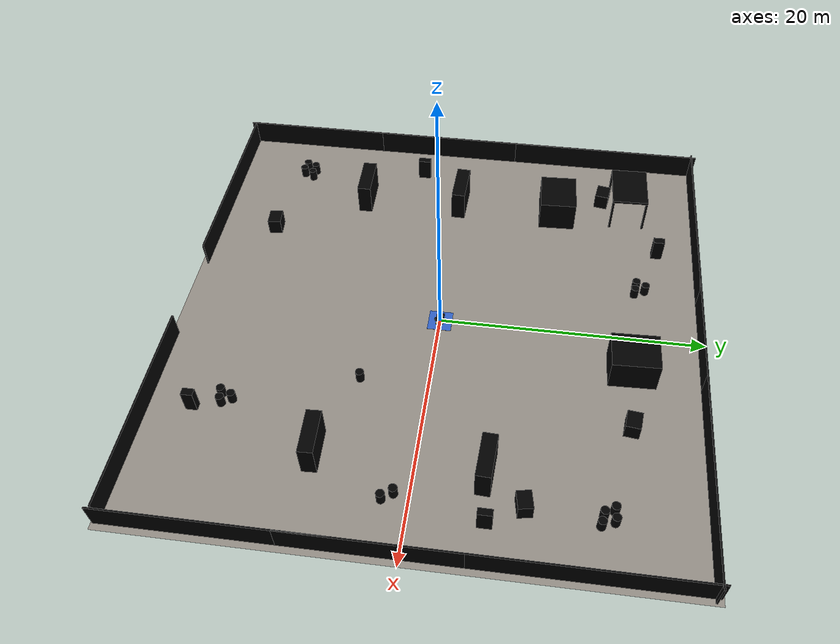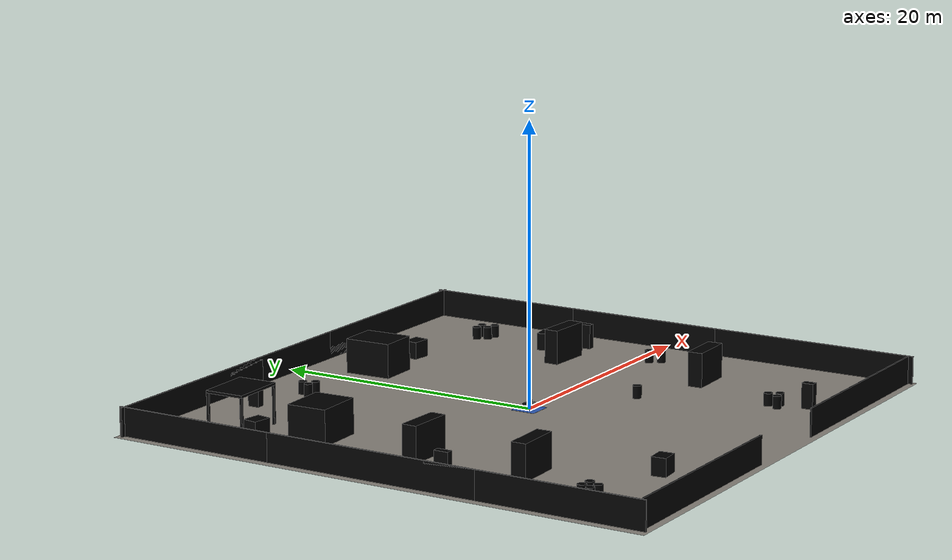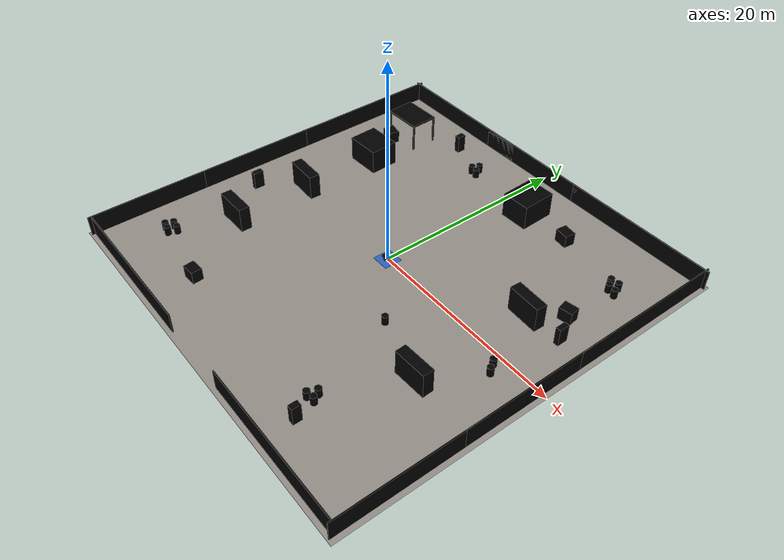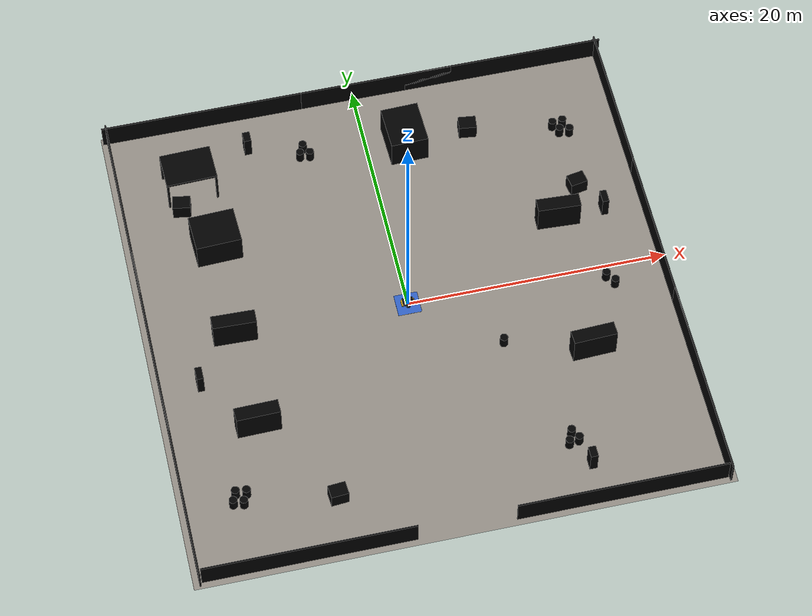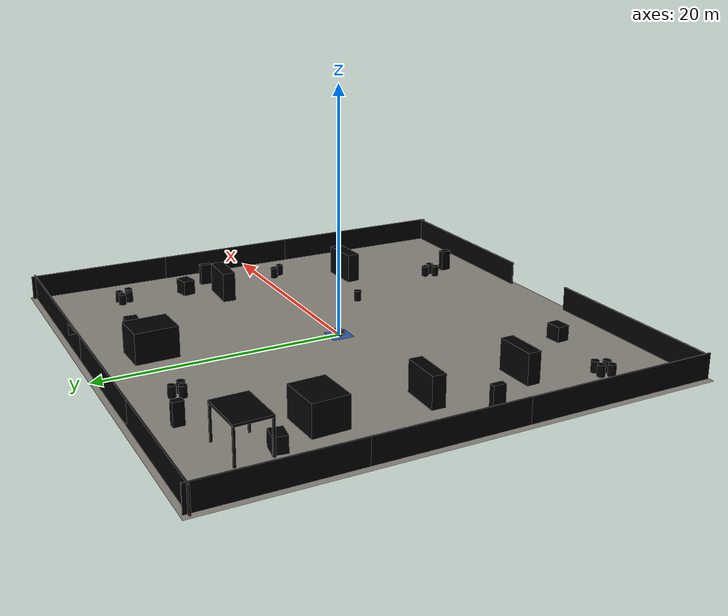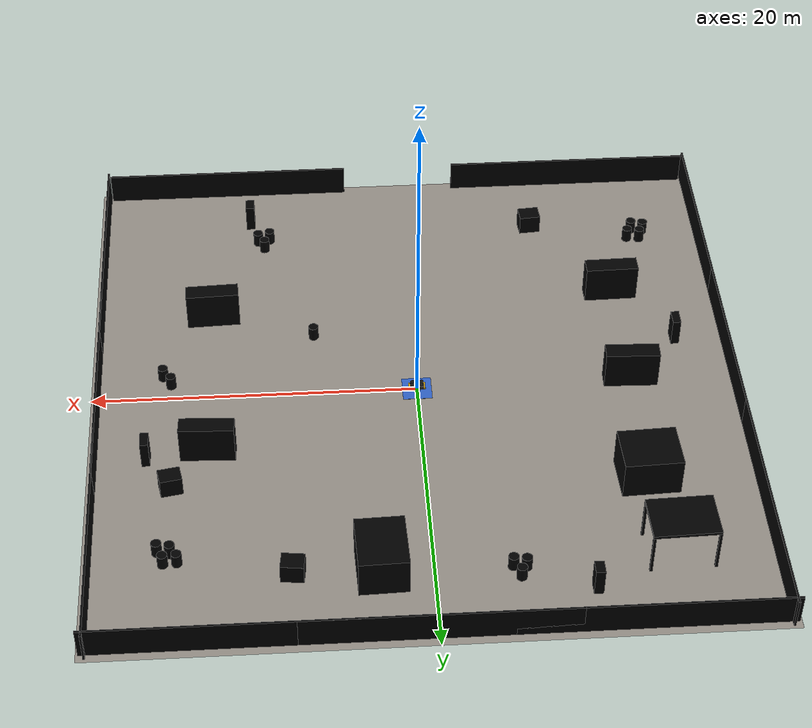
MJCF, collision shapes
<mujoco model="utility_depot_40_v1">
  <compiler angle="radian" meshdir="assets/utility_depot_40_v1" texturedir="assets/utility_depot_40_v1" />
  <option timestep="0.002" integrator="implicitfast" magnetic="0 0 0" />
  <visual>
    <headlight diffuse="0.6 0.6 0.6" ambient="0.3 0.3 0.3" specular="0 0 0" />
    <global azimuth="120" elevation="-20" offwidth="1280" offheight="720" />
  </visual>
  <asset>
    <texture type="skybox" builtin="gradient" rgb1="0.55 0.65 0.75" rgb2="0.08 0.1 0.14" width="512" height="3072" />
    <texture type="2d" name="ground_texture" file="ground_color.png" />
    <material name="ground_material" rgba="0.8 0.8 0.8 1" reflectance="0.05" texture="ground_texture" texuniform="true" texrepeat="8 8" />
    <mesh name="visual_mat_cabinet" file="visual_mat_cabinet.obj" smoothnormal="true" />
    <material name="visual_mat_cabinet" rgba="0.47 0.5 0.47 1" />
    <mesh name="visual_mat_cable" file="visual_mat_cable.obj" smoothnormal="true" />
    <material name="visual_mat_cable" rgba="0.018 0.02 0.022 1" />
    <mesh name="visual_mat_concrete" file="visual_mat_concrete.obj" smoothnormal="true" />
    <material name="visual_mat_concrete" rgba="0.32 0.31 0.28 1" />
    <mesh name="visual_mat_cone_orange" file="visual_mat_cone_orange.obj" smoothnormal="true" />
    <material name="visual_mat_cone_orange" rgba="0.9 0.22 0.025 1" />
    <mesh name="visual_mat_dark_steel" file="visual_mat_dark_steel.obj" smoothnormal="true" />
    <material name="visual_mat_dark_steel" rgba="0.075 0.09 0.095 1" />
    <mesh name="visual_mat_drum_blue" file="visual_mat_drum_blue.obj" smoothnormal="true" />
    <material name="visual_mat_drum_blue" rgba="0.035 0.16 0.29 1" />
    <mesh name="visual_mat_drum_green" file="visual_mat_drum_green.obj" smoothnormal="true" />
    <material name="visual_mat_drum_green" rgba="0.08 0.25 0.16 1" />
    <mesh name="visual_mat_galvanized" file="visual_mat_galvanized.obj" smoothnormal="true" />
    <material name="visual_mat_galvanized" rgba="0.36 0.39 0.4 1" />
    <mesh name="visual_mat_gravel_stone" file="visual_mat_gravel_stone.obj" smoothnormal="true" />
    <material name="visual_mat_gravel_stone" rgba="0.16 0.145 0.12 1" />
    <mesh name="visual_mat_inspection_red" file="visual_mat_inspection_red.obj" smoothnormal="true" />
    <material name="visual_mat_inspection_red" rgba="0.72 0.012 0.008 1" />
    <mesh name="visual_mat_label_white" file="visual_mat_label_white.obj" smoothnormal="true" />
    <material name="visual_mat_label_white" rgba="0.78 0.77 0.7 1" />
    <mesh name="visual_mat_pallet_wood" file="visual_mat_pallet_wood.obj" smoothnormal="true" />
    <material name="visual_mat_pallet_wood" rgba="0.33 0.16 0.065 1" />
    <mesh name="visual_mat_pipe" file="visual_mat_pipe.obj" smoothnormal="true" />
    <material name="visual_mat_pipe" rgba="0.18 0.21 0.23 1" />
    <mesh name="visual_mat_rack_blue" file="visual_mat_rack_blue.obj" smoothnormal="true" />
    <material name="visual_mat_rack_blue" rgba="0.045 0.16 0.28 1" />
    <mesh name="visual_mat_safety_yellow" file="visual_mat_safety_yellow.obj" smoothnormal="true" />
    <material name="visual_mat_safety_yellow" rgba="0.8 0.47 0.035 1" />
    <mesh name="visual_mat_shed" file="visual_mat_shed.obj" smoothnormal="true" />
    <material name="visual_mat_shed" rgba="0.29 0.31 0.3 1" />
    <mesh name="visual_mat_tire_wear" file="visual_mat_tire_wear.obj" smoothnormal="true" />
    <material name="visual_mat_tire_wear" rgba="0.055 0.048 0.038 1" />
    <mesh name="visual_mat_warning_black" file="visual_mat_warning_black.obj" smoothnormal="true" />
    <material name="visual_mat_warning_black" rgba="0.012 0.014 0.015 1" />
  </asset>
  <worldbody>
    <light name="sun" directional="true" pos="-4 -6 12" dir="0.25 0.35 -1" diffuse="0.9 0.88 0.82" />
    <camera name="overview" pos="37 -45 39" quat="0.82640088 0.45085961 0.1615545 0.29612058" fovy="25.9892" />
    <geom name="floor" type="plane" size="20 20 1" pos="0 0 0" material="ground_material" />
    <geom name="visual_mat_cabinet" type="mesh" mesh="visual_mat_cabinet" material="visual_mat_cabinet" contype="0" conaffinity="0" group="2" density="0" />
    <geom name="visual_mat_cable" type="mesh" mesh="visual_mat_cable" material="visual_mat_cable" contype="0" conaffinity="0" group="2" density="0" />
    <geom name="visual_mat_concrete" type="mesh" mesh="visual_mat_concrete" material="visual_mat_concrete" contype="0" conaffinity="0" group="2" density="0" />
    <geom name="visual_mat_cone_orange" type="mesh" mesh="visual_mat_cone_orange" material="visual_mat_cone_orange" contype="0" conaffinity="0" group="2" density="0" />
    <geom name="visual_mat_dark_steel" type="mesh" mesh="visual_mat_dark_steel" material="visual_mat_dark_steel" contype="0" conaffinity="0" group="2" density="0" />
    <geom name="visual_mat_drum_blue" type="mesh" mesh="visual_mat_drum_blue" material="visual_mat_drum_blue" contype="0" conaffinity="0" group="2" density="0" />
    <geom name="visual_mat_drum_green" type="mesh" mesh="visual_mat_drum_green" material="visual_mat_drum_green" contype="0" conaffinity="0" group="2" density="0" />
    <geom name="visual_mat_galvanized" type="mesh" mesh="visual_mat_galvanized" material="visual_mat_galvanized" contype="0" conaffinity="0" group="2" density="0" />
    <geom name="visual_mat_gravel_stone" type="mesh" mesh="visual_mat_gravel_stone" material="visual_mat_gravel_stone" contype="0" conaffinity="0" group="2" density="0" />
    <geom name="visual_mat_inspection_red" type="mesh" mesh="visual_mat_inspection_red" material="visual_mat_inspection_red" contype="0" conaffinity="0" group="2" density="0" />
    <geom name="visual_mat_label_white" type="mesh" mesh="visual_mat_label_white" material="visual_mat_label_white" contype="0" conaffinity="0" group="2" density="0" />
    <geom name="visual_mat_pallet_wood" type="mesh" mesh="visual_mat_pallet_wood" material="visual_mat_pallet_wood" contype="0" conaffinity="0" group="2" density="0" />
    <geom name="visual_mat_pipe" type="mesh" mesh="visual_mat_pipe" material="visual_mat_pipe" contype="0" conaffinity="0" group="2" density="0" />
    <geom name="visual_mat_rack_blue" type="mesh" mesh="visual_mat_rack_blue" material="visual_mat_rack_blue" contype="0" conaffinity="0" group="2" density="0" />
    <geom name="visual_mat_safety_yellow" type="mesh" mesh="visual_mat_safety_yellow" material="visual_mat_safety_yellow" contype="0" conaffinity="0" group="2" density="0" />
    <geom name="visual_mat_shed" type="mesh" mesh="visual_mat_shed" material="visual_mat_shed" contype="0" conaffinity="0" group="2" density="0" />
    <geom name="visual_mat_tire_wear" type="mesh" mesh="visual_mat_tire_wear" material="visual_mat_tire_wear" contype="0" conaffinity="0" group="2" density="0" />
    <geom name="visual_mat_warning_black" type="mesh" mesh="visual_mat_warning_black" material="visual_mat_warning_black" contype="0" conaffinity="0" group="2" density="0" />
    <geom name="col_barrel_01" type="cylinder" size="0.30500001 0.44999999" pos="-16 -14 0.47999996" quat="0.99968749 0 0 -0.024997393" group="3" rgba="0 0 0 0" />
    <geom name="col_barrel_02" type="cylinder" size="0.30500001 0.44999999" pos="-15.25 -14.15 0.47999999" quat="1 0 0 0" group="3" rgba="0 0 0 0" />
    <geom name="col_barrel_03" type="cylinder" size="0.30500001 0.44999999" pos="-15.699998 -13.25 0.47999996" quat="0.99968749 0 0 0.024997393" group="3" rgba="0 0 0 0" />
    <geom name="col_barrel_04" type="cylinder" size="0.30500001 0.44999999" pos="-14.900001 -13.35 0.47999996" quat="0.99968749 0 0 -0.024997393" group="3" rgba="0 0 0 0" />
    <geom name="col_barrel_05" type="cylinder" size="0.30500001 0.44999999" pos="15.700001 12.5 0.47999999" quat="1 0 0 0" group="3" rgba="0 0 0 0" />
    <geom name="col_barrel_06" type="cylinder" size="0.30500001 0.44999999" pos="14.950001 12.65 0.47999996" quat="0.99968749 0 0 0.024997393" group="3" rgba="0 0 0 0" />
    <geom name="col_barrel_07" type="cylinder" size="0.30500001 0.44999999" pos="15.35 13.4 0.47999996" quat="0.99968749 0 0 -0.024997393" group="3" rgba="0 0 0 0" />
    <geom name="col_barrel_08" type="cylinder" size="0.30500001 0.44999999" pos="14.55 13.35 0.47999999" quat="1 0 0 0" group="3" rgba="0 0 0 0" />
    <geom name="col_barrel_09" type="cylinder" size="0.30500001 0.44999999" pos="8.8000002 -14.5 0.47999996" quat="0.99968749 0 0 0.024997393" group="3" rgba="0 0 0 0" />
    <geom name="col_barrel_10" type="cylinder" size="0.30500001 0.44999999" pos="9.5499992 -14.35 0.47999996" quat="0.99968749 0 0 -0.024997393" group="3" rgba="0 0 0 0" />
    <geom name="col_barrel_11" type="cylinder" size="0.30500001 0.44999999" pos="9.1499996 -13.65 0.47999999" quat="1 0 0 0" group="3" rgba="0 0 0 0" />
    <geom name="col_barrel_12" type="cylinder" size="0.30500001 0.44999999" pos="-5.1999998 14.8 0.47999996" quat="0.99968749 0 0 0.024997393" group="3" rgba="0 0 0 0" />
    <geom name="col_barrel_13" type="cylinder" size="0.30500001 0.44999999" pos="-4.4499993 14.7 0.47999996" quat="0.99968749 0 0 -0.024997393" group="3" rgba="0 0 0 0" />
    <geom name="col_barrel_14" type="cylinder" size="0.30500001 0.44999999" pos="-4.8499999 15.5 0.47999999" quat="1 0 0 0" group="3" rgba="0 0 0 0" />
    <geom name="col_barrel_15" type="cylinder" size="0.30500001 0.44999999" pos="15.6 -1.8000002 0.47999996" quat="0.99968749 0 0 0.024997393" group="3" rgba="0 0 0 0" />
    <geom name="col_barrel_16" type="cylinder" size="0.30500001 0.44999999" pos="15.1 -1.0500002 0.47999996" quat="0.99968749 0 0 -0.024997393" group="3" rgba="0 0 0 0" />
    <geom name="col_cable_spool_east" type="box" size="0.66554493 0.51884317 0.63" pos="-8.5 -14.999999 0.58000004" quat="0.99920011 0 0 0.039989322" group="3" rgba="0 0 0 0" />
    <geom name="col_cable_spool_expanded_03" type="box" size="0.66554439 0.51884282 0.63" pos="15.000002 7.5000005 0.58000004" quat="0.99595273 0 0 0.089878567" group="3" rgba="0 0 0 0" />
    <geom name="col_cable_spool_expanded_04" type="box" size="0.68173414 0.54203928 0.63" pos="-15.000001 11.999999 0.58000004" quat="0.99680179 0 0 -0.079914719" group="3" rgba="0 0 0 0" />
    <geom name="col_cable_spool_south" type="box" size="0.6817342 0.54203892 0.63" pos="8 14.5 0.58000004" quat="0.99820054 0 0 -0.059964001" group="3" rgba="0 0 0 0" />
    <geom name="col_covered_work_shed_post_1" type="box" size="0.079999998 0.079999998 1.3599999" pos="-15.831283 12.59954 1.3599999" quat="0.99988753 0 0 0.014999437" group="3" rgba="0 0 0 0" />
    <geom name="col_covered_work_shed_post_2" type="box" size="0.079999998 0.079999998 1.3599999" pos="-15.911964 15.288129 1.3599999" quat="0.99988753 0 0 0.014999437" group="3" rgba="0 0 0 0" />
    <geom name="col_covered_work_shed_post_3" type="box" size="0.079999998 0.079999998 1.3599999" pos="-12.088036 12.711871 1.3599999" quat="0.99988753 0 0 0.014999437" group="3" rgba="0 0 0 0" />
    <geom name="col_covered_work_shed_post_4" type="box" size="0.079999998 0.079999998 1.3599999" pos="-12.168718 15.40046 1.3599999" quat="0.99988753 0 0 0.014999437" group="3" rgba="0 0 0 0" />
    <geom name="col_covered_work_shed_roof" type="box" size="1.9524658 1.4248999 0.090000004" pos="-14 14 2.8099999" quat="0.99988753 0 0 0.014999438" group="3" rgba="0 0 0 0" />
    <geom name="col_fence_east_1" type="box" size="7.8549995 0.055000342 1" pos="19.5 -12 1" quat="0.70710683 0 0 -0.70710671" group="3" rgba="0 0 0 0" />
    <geom name="col_fence_east_2" type="box" size="7.855 0.055000342 1" pos="19.5 0 1" quat="0.70710683 0 0 -0.70710671" group="3" rgba="0 0 0 0" />
    <geom name="col_fence_east_3" type="box" size="7.8549995 0.055000342 1" pos="19.5 12 1" quat="0.70710683 0 0 -0.70710671" group="3" rgba="0 0 0 0" />
    <geom name="col_fence_north_1" type="box" size="7.8549995 0.055 1" pos="-12 19.5 1" quat="1 0 0 0" group="3" rgba="0 0 0 0" />
    <geom name="col_fence_north_2" type="box" size="7.855 0.055 1" pos="0 19.5 1" quat="1 0 0 0" group="3" rgba="0 0 0 0" />
    <geom name="col_fence_north_3" type="box" size="7.8549995 0.055 1" pos="12 19.5 1" quat="1 0 0 0" group="3" rgba="0 0 0 0" />
    <geom name="col_fence_south_1" type="box" size="7.8549995 0.055 1" pos="-11.5 -19.5 1" quat="1 0 0 0" group="3" rgba="0 0 0 0" />
    <geom name="col_fence_south_2" type="box" size="7.8549995 0.055 1" pos="11.5 -19.5 1" quat="1 0 0 0" group="3" rgba="0 0 0 0" />
    <geom name="col_fence_west_1" type="box" size="7.8549995 0.055000342 1" pos="-19.5 -12 1" quat="0.70710683 0 0 -0.70710671" group="3" rgba="0 0 0 0" />
    <geom name="col_fence_west_2" type="box" size="7.855 0.055000342 1" pos="-19.5 0 1" quat="0.70710683 0 0 -0.70710671" group="3" rgba="0 0 0 0" />
    <geom name="col_fence_west_3" type="box" size="7.8549995 0.055000342 1" pos="-19.5 12 1" quat="0.70710683 0 0 -0.70710671" group="3" rgba="0 0 0 0" />
    <geom name="col_inspection_drum_red" type="cylinder" size="0.30500001 0.44999999" pos="6.1999998 -5 0.47999999" quat="1 0 0 0" group="3" rgba="0 0 0 0" />
    <geom name="col_rack_expanded_04" type="box" size="1.65 0.5374999 1.25" pos="12.499699 -6.992506 1.25" quat="0.019998722 -0 -0 -0.99980003" group="3" rgba="0 0 0 0" />
    <geom name="col_rack_expanded_05" type="box" size="1.65 0.53749996 1.25" pos="12.800375 4.8074908 1.25" quat="0.024997449 0 0 0.99968749" group="3" rgba="0 0 0 0" />
    <geom name="col_rack_expanded_06" type="box" size="1.7449999 1.45 1.25" pos="2.9923513 14.454886 1.25" quat="0.71763349 0 0 -0.69642097" group="3" rgba="0 0 0 0" />
    <geom name="col_rack_north_east" type="box" size="1.7449998 1.4499998 1.25" pos="-13.054797 8.1898031 1.25" quat="0.99980003 0 0 0.019998666" group="3" rgba="0 0 0 0" />
    <geom name="col_rack_west_mid" type="box" size="1.65 0.53750044 1.25" pos="-12.99985 -8.0074987 1.25" quat="0.99994999 0 0 0.009999834" group="3" rgba="0 0 0 0" />
    <geom name="col_rack_west_north" type="box" size="1.65 0.53750002 1.25" pos="-13.200226 -0.0074964776 1.25" quat="0.99988753 0 0 -0.01499944" group="3" rgba="0 0 0 0" />
    <geom name="col_utility_cabinet_east" type="box" size="0.25000003 0.51150024 0.89999998" pos="16.5 5.0865002 0.89999998" quat="7.5497901e-08 -0 -0 -1" group="3" rgba="0 0 0 0" />
    <geom name="col_utility_cabinet_expanded_03" type="box" size="0.25000003 0.5115 0.89999998" pos="-16.5 -3.5864999 0.89999998" quat="1 0 0 0" group="3" rgba="0 0 0 0" />
    <geom name="col_utility_cabinet_expanded_04" type="box" size="0.42500001 0.27875048 0.89999998" pos="10.02875 -16.299999 0.89999998" quat="0.70710683 0 0 0.70710671" group="3" rgba="0 0 0 0" />
    <geom name="col_utility_cabinet_north" type="box" size="0.42500001 0.27875048 0.89999998" pos="-9.0287504 16.5 0.89999998" quat="0.70710683 0 0 -0.70710671" group="3" rgba="0 0 0 0" />
    <site name="site_airpatrol_01" pos="0 -6 4" size="0.05" group="5" rgba="0.2 0.8 1 0.6" />
    <site name="site_airpatrol_02" pos="8 -10 4" size="0.05" group="5" rgba="0.2 0.8 1 0.6" />
    <site name="site_airpatrol_03" pos="10 -4 4" size="0.05" group="5" rgba="0.2 0.8 1 0.6" />
    <site name="site_airpatrol_04" pos="8 10 4" size="0.05" group="5" rgba="0.2 0.8 1 0.6" />
    <site name="site_airpatrol_05" pos="0 10 4" size="0.05" group="5" rgba="0.2 0.8 1 0.6" />
    <site name="site_airpatrol_06" pos="-7 8 4" size="0.05" group="5" rgba="0.2 0.8 1 0.6" />
    <site name="site_airpatrol_07" pos="-7 0 4" size="0.05" group="5" rgba="0.2 0.8 1 0.6" />
    <site name="site_airpatrol_08" pos="-7 -8 4" size="0.05" group="5" rgba="0.2 0.8 1 0.6" />
    <site name="site_dock" pos="0 0 0" size="0.05" group="5" rgba="0.2 0.8 1 0.6" />
    <site name="site_huskyspawn" pos="0 0 0" size="0.05" group="5" rgba="0.2 0.8 1 0.6" />
    <site name="site_patrol_01" pos="0 -6 0" size="0.05" group="5" rgba="0.2 0.8 1 0.6" />
    <site name="site_patrol_02" pos="8 -10 0" size="0.05" group="5" rgba="0.2 0.8 1 0.6" />
    <site name="site_patrol_03" pos="8 0 0" size="0.05" group="5" rgba="0.2 0.8 1 0.6" />
    <site name="site_patrol_04" pos="8 10 0" size="0.05" group="5" rgba="0.2 0.8 1 0.6" />
    <site name="site_patrol_05" pos="0 10 0" size="0.05" group="5" rgba="0.2 0.8 1 0.6" />
    <site name="site_patrol_06" pos="-7 8 0" size="0.05" group="5" rgba="0.2 0.8 1 0.6" />
    <site name="site_patrol_07" pos="-7 0 0" size="0.05" group="5" rgba="0.2 0.8 1 0.6" />
    <site name="site_patrol_08" pos="-7 -8 0" size="0.05" group="5" rgba="0.2 0.8 1 0.6" />
    <site name="site_x2spawn" pos="-2 -1 0" size="0.05" group="5" rgba="0.2 0.8 1 0.6" />
  </worldbody>
  <include file="../robots/husky.xml" />
  <include file="../robots/x2.xml" />
</mujoco>

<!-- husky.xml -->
<mujoco>
  <custom>
    <text name="husky.scan_site" data="lidar2d_0_laser"/>
  </custom>

  <worldbody>
    <!-- Model-owned default home. The ground map origin is established from
         the spawn GPS fix, so ROS calls this (0, 0) in every world. -->
    <geom name="dock_pad" type="box" size="0.9 0.9 0.005"
          pos="0 0 0.005" contype="0" conaffinity="0" group="1"
          rgba="0.2 0.4 0.8 1"/>
    <body name="base_link" pos="0 0 0.197">
      <joint name="base_free" type="free"/>
      <geom name="chassis" type="box" size="0.4 0.28 0.12" pos="0 0 0.12"
            mass="42" rgba="0.15 0.15 0.15 1"/>
      <geom name="top_plate" type="box" size="0.32 0.26 0.02" pos="0 0 0.26"
            mass="4" rgba="0.1 0.1 0.1 1"/>
      <geom name="bumper_f" type="box" size="0.06 0.28 0.05" pos="0.45 0 0.03"
            mass="1" rgba="0.9 0.7 0.1 1"/>
      <geom name="bumper_r" type="box" size="0.06 0.28 0.05" pos="-0.45 0 0.03"
            mass="1" rgba="0.9 0.7 0.1 1"/>
      <geom name="lidar_puck" type="cylinder" size="0.05 0.035" pos="0.3 0 0.33"
            mass="0.5" rgba="0.2 0.2 0.25 1"/>
      <geom name="camera_body" type="box" size="0.015 0.045 0.015" pos="0.42 0 0.28"
            mass="0.1" rgba="0.2 0.2 0.25 1"/>
      <geom name="caster_front" type="sphere" size="0.164" pos="0.3 0 -0.036"
            group="3" priority="1" friction="0.005 0.001" mass="1"
            rgba="0.25 0.25 0.25 1"/>
      <geom name="caster_rear" type="sphere" size="0.164" pos="-0.3 0 -0.036"
            group="3" priority="1" friction="0.005 0.001" mass="1"
            rgba="0.25 0.25 0.25 1"/>
      <site name="lidar2d_0_laser" pos="0.3 0 0.37" size="0.01"/>
      <site name="camera_0_link" pos="0.44 0 0.28" size="0.01"/>
      <!-- MJCF cameras look down their -z with +y up in the image, so
           xyaxes points this one along the robot's +x with +z up. fovy 58
           matches the K the sim publishes in camera_info. -->
      <camera name="camera_0" pos="0.44 0 0.28" xyaxes="0 -1 0 0 0 1" fovy="58"/>
      <body name="wheel_left" pos="0 0.2854 -0.035">
        <joint name="wheel_left_j" axis="0 1 0" damping="0.2"/>
        <geom name="drive_wheel_left" type="sphere" size="0.165" group="3"
              friction="0.9" mass="2.6" rgba="0.1 0.1 0.1 1"/>
      </body>
      <body name="wheel_right" pos="0 -0.2854 -0.035">
        <joint name="wheel_right_j" axis="0 1 0" damping="0.2"/>
        <geom name="drive_wheel_right" type="sphere" size="0.165" group="3"
              friction="0.9" mass="2.6" rgba="0.1 0.1 0.1 1"/>
      </body>
    </body>
  </worldbody>

  <actuator>
    <general name="act_left" joint="wheel_left_j" ctrllimited="true"
             ctrlrange="-15 15" forcelimited="true" forcerange="-80 80"
             biastype="affine" gainprm="35" biasprm="0 0 -35"/>
    <general name="act_right" joint="wheel_right_j" ctrllimited="true"
             ctrlrange="-15 15" forcelimited="true" forcerange="-80 80"
             biastype="affine" gainprm="35" biasprm="0 0 -35"/>
  </actuator>
</mujoco>

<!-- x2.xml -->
<mujoco>
  <asset>
    <texture type="2d" name="x2_tex"
             file="../../third_party/skydio_x2/assets/X2_lowpoly_texture_SpinningProps_1024.png"/>
    <material name="x2_mat" texture="x2_tex"/>
    <!-- The Menagerie OBJ is authored in centimeters. -->
    <mesh name="x2_mesh" file="../../third_party/skydio_x2/assets/X2_lowpoly.obj"
          scale="0.01 0.01 0.01"/>
  </asset>

  <worldbody>
    <!-- Pose-neutral model: each world attaches this body and its landing pad
         at the world-authored X2 spawn. -->
    <body name="x2" pos="0 0 0.1">
      <joint name="x2_free" type="free"/>
      <!-- Visual shell only; the quat is upstream's mesh-to-body mapping.
           density 0 or the mesh volume adds ~5 kg and the drone can't lift. -->
      <geom name="x2_visual" type="mesh" mesh="x2_mesh" material="x2_mat"
            quat="0 0 1 1" contype="0" conaffinity="0" group="2" density="0"/>
      <geom name="x2_box0" type="box" size="0.06 0.027 0.02" pos="0.04 0 0.02"
            group="3" density="0"/>
      <geom name="x2_box1" type="box" size="0.06 0.027 0.02" pos="0.04 0 0.06"
            group="3" density="0"/>
      <geom name="x2_box2" type="box" size="0.05 0.027 0.02" pos="-0.07 0 0.065"
            group="3" density="0"/>
      <geom name="x2_box3" type="box" size="0.023 0.017 0.01" pos="-0.137 0.008 0.065"
            quat="1 0 0 1" group="3" density="0"/>
      <geom name="rotor1" type="ellipsoid" size="0.13 0.13 0.01" pos="-0.14 -0.18 0.05"
            group="3" mass="0.25"/>
      <geom name="rotor2" type="ellipsoid" size="0.13 0.13 0.01" pos="-0.14 0.18 0.05"
            group="3" mass="0.25"/>
      <geom name="rotor3" type="ellipsoid" size="0.13 0.13 0.01" pos="0.14 0.18 0.08"
            group="3" mass="0.25"/>
      <geom name="rotor4" type="ellipsoid" size="0.13 0.13 0.01" pos="0.14 -0.18 0.08"
            group="3" mass="0.25"/>
      <geom name="x2_core" type="ellipsoid" size="0.16 0.04 0.02" pos="0 0 0.02"
            contype="0" conaffinity="0" group="2" mass="0.325"
            rgba="0 0 0 0"/>
      <site name="thrust1" pos="-0.14 -0.18 0.05" size="0.01" group="5"/>
      <site name="thrust2" pos="-0.14 0.18 0.05" size="0.01" group="5"/>
      <site name="thrust3" pos="0.14 0.18 0.08" size="0.01" group="5"/>
      <site name="thrust4" pos="0.14 -0.18 0.08" size="0.01" group="5"/>
      <camera name="x2_camera" pos="0.1 0 0.05"
              xyaxes="0 -1 0 0.70710678 0 0.70710678" fovy="58"/>
    </body>
  </worldbody>
</mujoco>
